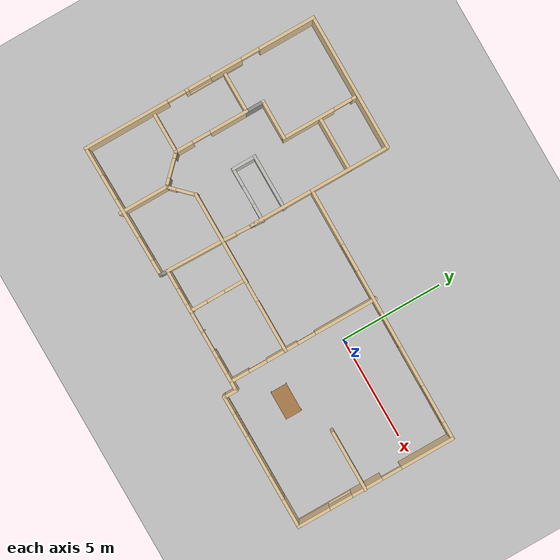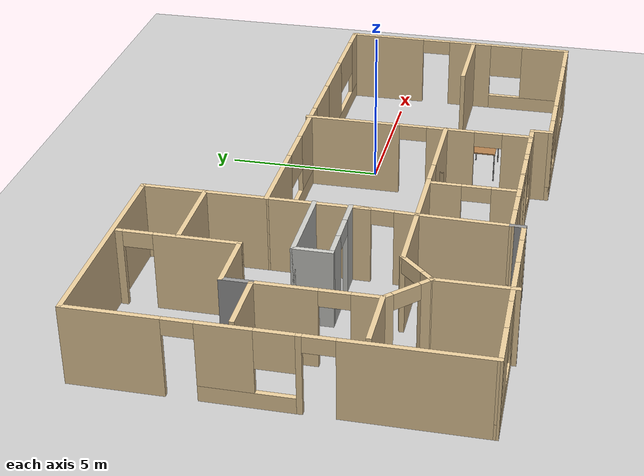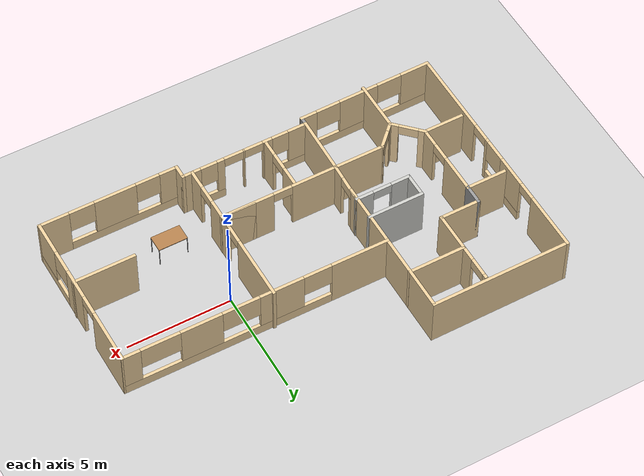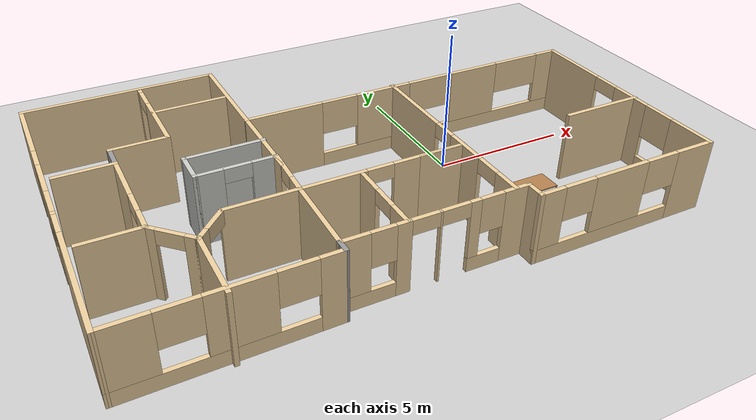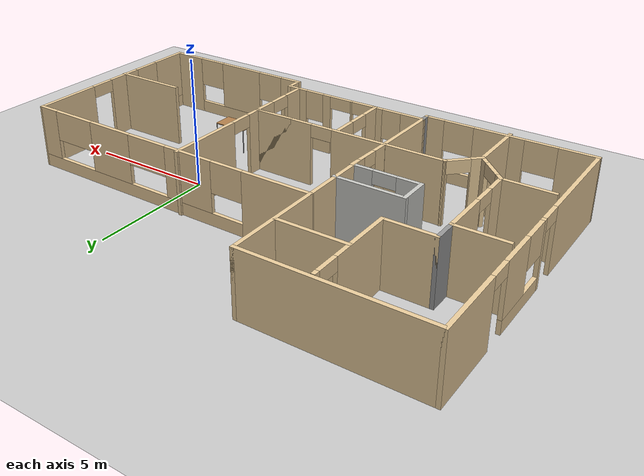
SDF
<sdf version="1.6">
 <world name="kr5mobile">
  <light name="sun" type="directional">
   <pose>0 0 10 0 -0 0</pose>
   <diffuse>0.8 0.8 0.8 1</diffuse>
   <specular>0.1 0.1 0.1 1</specular>
   <attenuation>
    <range>1000</range>
    <constant>0.9</constant>
    <linear>0.01</linear>
    <quadratic>0.001</quadratic>
   </attenuation>
   <direction>-0.5 0.5 -1</direction>
  </light>
  <model name="ground_plane">
   <static>1</static>
   <link name="link">
    <collision name="collision">
     <geometry><plane><normal>0 0 1</normal><size>100 100</size></plane></geometry>
     <surface><friction><ode><mu>100</mu><mu2>50</mu2></ode></friction></surface>
    </collision>
    <visual name="visual">
     <cast_shadows>0</cast_shadows>
     <geometry><plane><normal>0 0 1</normal><size>100 100</size></plane></geometry>
     <material>
      <script><uri>file://media/materials/scripts/gazebo.material</uri><name>Gazebo/Grey</name></script>
     </material>
    </visual>
   </link>
  </model>
  <gravity>0 0 -9.8</gravity>
  <magnetic_field>6e-06 2.3e-05 -4.2e-05</magnetic_field>
  <atmosphere type="adiabatic"/>
  <physics name="default_physics" default="0" type="ode">
   <max_step_size>0.001</max_step_size>
   <real_time_factor>1</real_time_factor>
   <real_time_update_rate>1000</real_time_update_rate>
  </physics>
  <scene><ambient>0.4 0.4 0.4 1</ambient><background>0.7 0.7 0.7 1</background><shadows>1</shadows></scene>
  <spherical_coordinates>
   <surface_model>EARTH_WGS84</surface_model>
   <latitude_deg>0</latitude_deg>
   <longitude_deg>0</longitude_deg>
   <elevation>0</elevation>
   <heading_deg>0</heading_deg>
  </spherical_coordinates>
  <model name="HouseModel">
   <pose>-3.51028 0.019662 0 0 -0 0</pose>
   <link name="Wall_27">
    <pose>-9.61527 0.08422 0 0 -0 1.5708</pose>
    <visual name="Wall_27_Visual_0">
     <pose>-3.75365 0 1.25 0 -0 0</pose>
     <geometry><box><size>4.24271 0.15 2.5</size></box></geometry>
     <material>
      <script><uri>file://media/materials/scripts/gazebo.material</uri><name>Gazebo/Grey</name></script>
      <ambient>0.921569 0.807843 0.615686 1</ambient>
     </material>
    </visual>
    <collision name="Wall_27_Collision_0">
     <geometry><box><size>4.24271 0.15 2.5</size></box></geometry>
     <pose>-3.75365 0 1.25 0 -0 0</pose>
    </collision>
    <visual name="Wall_27_Visual_1">
     <pose>-0.648664 0 1.25 0 -0 0</pose>
     <geometry><box><size>0.167251 0.15 2.5</size></box></geometry>
     <material>
      <script><uri>file://media/materials/scripts/gazebo.material</uri><name>Gazebo/Grey</name></script>
      <ambient>0.921569 0.807843 0.615686 1</ambient>
     </material>
    </visual>
    <collision name="Wall_27_Collision_1">
     <geometry><box><size>0.167251 0.15 2.5</size></box></geometry>
     <pose>-0.648664 0 1.25 0 -0 0</pose>
    </collision>
    <visual name="Wall_27_Visual_2">
     <pose>4.45248 0 1.25 0 -0 0</pose>
     <geometry><box><size>2.84504 0.15 2.5</size></box></geometry>
     <material>
      <script><uri>file://media/materials/scripts/gazebo.material</uri><name>Gazebo/Grey</name></script>
      <ambient>0.921569 0.807843 0.615686 1</ambient>
     </material>
    </visual>
    <collision name="Wall_27_Collision_2">
     <geometry><box><size>2.84504 0.15 2.5</size></box></geometry>
     <pose>4.45248 0 1.25 0 -0 0</pose>
    </collision>
    <visual name="Wall_27_Visual_3">
     <pose>0.782462 0 0.25 0 -0 0</pose>
     <geometry><box><size>2.695 0.15 0.5</size></box></geometry>
     <material>
      <script><uri>file://media/materials/scripts/gazebo.material</uri><name>Gazebo/Grey</name></script>
      <ambient>0.921569 0.807843 0.615686 1</ambient>
     </material>
    </visual>
    <collision name="Wall_27_Collision_3">
     <geometry><box><size>2.695 0.15 0.5</size></box></geometry>
     <pose>0.782462 0 0.25 0 -0 0</pose>
    </collision>
    <visual name="Wall_27_Visual_4">
     <pose>1.33996 0 1.5 0 -0 0</pose>
     <geometry><box><size>1.58 0.15 2</size></box></geometry>
     <material>
      <script><uri>file://media/materials/scripts/gazebo.material</uri><name>Gazebo/Grey</name></script>
      <ambient>0.921569 0.807843 0.615686 1</ambient>
     </material>
    </visual>
    <collision name="Wall_27_Collision_4">
     <geometry><box><size>1.58 0.15 2</size></box></geometry>
     <pose>1.33996 0 1.5 0 -0 0</pose>
    </collision>
    <visual name="Wall_27_Visual_5">
     <pose>-0.007538 0 1.9 0 -0 0</pose>
     <geometry><box><size>1.115 0.15 1.2</size></box></geometry>
     <material>
      <script><uri>file://media/materials/scripts/gazebo.material</uri><name>Gazebo/Grey</name></script>
      <ambient>0.921569 0.807843 0.615686 1</ambient>
     </material>
    </visual>
    <collision name="Wall_27_Collision_5">
     <geometry><box><size>1.115 0.15 1.2</size></box></geometry>
     <pose>-0.007538 0 1.9 0 -0 0</pose>
    </collision>
    <visual name="Wall_27_Visual_6">
     <pose>-1.18229 0 2.25 0 -0 0</pose>
     <geometry><box><size>0.9 0.15 0.5</size></box></geometry>
     <material>
      <script><uri>file://media/materials/scripts/gazebo.material</uri><name>Gazebo/Grey</name></script>
      <ambient>0.921569 0.807843 0.615686 1</ambient>
     </material>
    </visual>
    <collision name="Wall_27_Collision_6">
     <geometry><box><size>0.9 0.15 0.5</size></box></geometry>
     <pose>-1.18229 0 2.25 0 -0 0</pose>
    </collision>
    <visual name="Wall_27_Visual_7">
     <pose>2.57996 0 2.25 0 -0 0</pose>
     <geometry><box><size>0.9 0.15 0.5</size></box></geometry>
     <material>
      <script><uri>file://media/materials/scripts/gazebo.material</uri><name>Gazebo/Grey</name></script>
      <ambient>0.921569 0.807843 0.615686 1</ambient>
     </material>
    </visual>
    <collision name="Wall_27_Collision_7">
     <geometry><box><size>0.9 0.15 0.5</size></box></geometry>
     <pose>2.57996 0 2.25 0 -0 0</pose>
    </collision>
   </link>
   <link name="Wall_28">
    <collision name="Wall_28_Collision">
     <geometry><box><size>6.75 0.15 2.5</size></box></geometry>
     <pose>0 0 1.25 0 -0 0</pose>
    </collision>
    <visual name="Wall_28_Visual">
     <pose>0 0 1.25 0 -0 0</pose>
     <geometry><box><size>6.75 0.15 2.5</size></box></geometry>
     <material>
      <script><uri>file://media/materials/scripts/gazebo.material</uri><name>Gazebo/Grey</name></script>
      <ambient>0.921569 0.807843 0.615686 1</ambient>
     </material>
    </visual>
    <pose>-6.31527 5.88422 0 0 -0 0</pose>
   </link>
   <link name="Wall_31">
    <collision name="Wall_31_Collision">
     <geometry><box><size>4 0.15 2.5</size></box></geometry>
     <pose>0 0 1.25 0 -0 0</pose>
    </collision>
    <visual name="Wall_31_Visual">
     <pose>0 0 1.25 0 -0 0</pose>
     <geometry><box><size>4 0.15 2.5</size></box></geometry>
     <material>
      <script><uri>file://media/materials/scripts/gazebo.material</uri><name>Gazebo/Grey</name></script>
      <ambient>0.921569 0.807843 0.615686 1</ambient>
     </material>
    </visual>
    <pose>-3.01526 3.95922 0 0 0 -1.5708</pose>
   </link>
   <link name="Wall_32">
    <pose>3.28473 2 0 0 0 -0.005432</pose>
    <visual name="Wall_32_Visual_0">
     <pose>-4.9697 0 1.25 0 -0 0</pose>
     <geometry><box><size>2.81061 0.15 2.5</size></box></geometry>
     <material>
      <script><uri>file://media/materials/scripts/gazebo.material</uri><name>Gazebo/Grey</name></script>
      <ambient>0.921569 0.807843 0.615686 1</ambient>
     </material>
    </visual>
    <collision name="Wall_32_Collision_0">
     <geometry><box><size>2.81061 0.15 2.5</size></box></geometry>
     <pose>-4.9697 0 1.25 0 -0 0</pose>
    </collision>
    <visual name="Wall_32_Visual_1">
     <pose>1.4053 0 0.25 0 -0 0</pose>
     <geometry><box><size>9.93939 0.15 0.5</size></box></geometry>
     <material>
      <script><uri>file://media/materials/scripts/gazebo.material</uri><name>Gazebo/Grey</name></script>
      <ambient>0.921569 0.807843 0.615686 1</ambient>
     </material>
    </visual>
    <collision name="Wall_32_Collision_1">
     <geometry><box><size>9.93939 0.15 0.5</size></box></geometry>
     <pose>1.4053 0 0.25 0 -0 0</pose>
    </collision>
    <visual name="Wall_32_Visual_2">
     <pose>-1.17274 0 1.5 0 -0 0</pose>
     <geometry><box><size>2.10185 0.15 2</size></box></geometry>
     <material>
      <script><uri>file://media/materials/scripts/gazebo.material</uri><name>Gazebo/Grey</name></script>
      <ambient>0.921569 0.807843 0.615686 1</ambient>
     </material>
    </visual>
    <collision name="Wall_32_Collision_2">
     <geometry><box><size>2.10185 0.15 2</size></box></geometry>
     <pose>-1.17274 0 1.5 0 -0 0</pose>
    </collision>
    <visual name="Wall_32_Visual_3">
     <pose>2.62946 0 1.5 0 -0 0</pose>
     <geometry><box><size>1.96709 0.15 2</size></box></geometry>
     <material>
      <script><uri>file://media/materials/scripts/gazebo.material</uri><name>Gazebo/Grey</name></script>
      <ambient>0.921569 0.807843 0.615686 1</ambient>
     </material>
    </visual>
    <collision name="Wall_32_Collision_3">
     <geometry><box><size>1.96709 0.15 2</size></box></geometry>
     <pose>2.62946 0 1.5 0 -0 0</pose>
    </collision>
    <visual name="Wall_32_Visual_4">
     <pose>5.92268 0 1.5 0 -0 0</pose>
     <geometry><box><size>0.904636 0.15 2</size></box></geometry>
     <material>
      <script><uri>file://media/materials/scripts/gazebo.material</uri><name>Gazebo/Grey</name></script>
      <ambient>0.921569 0.807843 0.615686 1</ambient>
     </material>
    </visual>
    <collision name="Wall_32_Collision_4">
     <geometry><box><size>0.904636 0.15 2</size></box></geometry>
     <pose>5.92268 0 1.5 0 -0 0</pose>
    </collision>
    <visual name="Wall_32_Visual_5">
     <pose>-2.89403 0 1.9 0 -0 0</pose>
     <geometry><box><size>1.34072 0.15 1.2</size></box></geometry>
     <material>
      <script><uri>file://media/materials/scripts/gazebo.material</uri><name>Gazebo/Grey</name></script>
      <ambient>0.921569 0.807843 0.615686 1</ambient>
     </material>
    </visual>
    <collision name="Wall_32_Collision_5">
     <geometry><box><size>1.34072 0.15 1.2</size></box></geometry>
     <pose>-2.89403 0 1.9 0 -0 0</pose>
    </collision>
    <visual name="Wall_32_Visual_6">
     <pose>0.762044 0 1.9 0 -0 0</pose>
     <geometry><box><size>1.76773 0.15 1.2</size></box></geometry>
     <material>
      <script><uri>file://media/materials/scripts/gazebo.material</uri><name>Gazebo/Grey</name></script>
      <ambient>0.921569 0.807843 0.615686 1</ambient>
     </material>
    </visual>
    <collision name="Wall_32_Collision_6">
     <geometry><box><size>1.76773 0.15 1.2</size></box></geometry>
     <pose>0.762044 0 1.9 0 -0 0</pose>
    </collision>
    <visual name="Wall_32_Visual_7">
     <pose>4.54168 0 1.9 0 -0 0</pose>
     <geometry><box><size>1.85736 0.15 1.2</size></box></geometry>
     <material>
      <script><uri>file://media/materials/scripts/gazebo.material</uri><name>Gazebo/Grey</name></script>
      <ambient>0.921569 0.807843 0.615686 1</ambient>
     </material>
    </visual>
    <collision name="Wall_32_Collision_7">
     <geometry><box><size>1.85736 0.15 1.2</size></box></geometry>
     <pose>4.54168 0 1.9 0 -0 0</pose>
    </collision>
   </link>
   <link name="Wall_35">
    <pose>9.58474 -1.95922 0 0 0 -1.5708</pose>
    <visual name="Wall_35_Visual_0">
     <pose>-2.66047 0 1.25 0 -0 0</pose>
     <geometry><box><size>2.67907 0.15 2.5</size></box></geometry>
     <material>
      <script><uri>file://media/materials/scripts/gazebo.material</uri><name>Gazebo/Grey</name></script>
      <ambient>0.921569 0.807843 0.615686 1</ambient>
     </material>
    </visual>
    <collision name="Wall_35_Collision_0">
     <geometry><box><size>2.67907 0.15 2.5</size></box></geometry>
     <pose>-2.66047 0 1.25 0 -0 0</pose>
    </collision>
    <visual name="Wall_35_Visual_1">
     <pose>0.421947 0 1.25 0 -0 0</pose>
     <geometry><box><size>1.52924 0.15 2.5</size></box></geometry>
     <material>
      <script><uri>file://media/materials/scripts/gazebo.material</uri><name>Gazebo/Grey</name></script>
      <ambient>0.921569 0.807843 0.615686 1</ambient>
     </material>
    </visual>
    <collision name="Wall_35_Collision_1">
     <geometry><box><size>1.52924 0.15 2.5</size></box></geometry>
     <pose>0.421947 0 1.25 0 -0 0</pose>
    </collision>
    <visual name="Wall_35_Visual_2">
     <pose>2.59328 0 0.25 0 -0 0</pose>
     <geometry><box><size>2.81343 0.15 0.5</size></box></geometry>
     <material>
      <script><uri>file://media/materials/scripts/gazebo.material</uri><name>Gazebo/Grey</name></script>
      <ambient>0.921569 0.807843 0.615686 1</ambient>
     </material>
    </visual>
    <collision name="Wall_35_Collision_2">
     <geometry><box><size>2.81343 0.15 0.5</size></box></geometry>
     <pose>2.59328 0 0.25 0 -0 0</pose>
    </collision>
    <visual name="Wall_35_Visual_3">
     <pose>3.16203 0 1.5 0 -0 0</pose>
     <geometry><box><size>1.67593 0.15 2</size></box></geometry>
     <material>
      <script><uri>file://media/materials/scripts/gazebo.material</uri><name>Gazebo/Grey</name></script>
      <ambient>0.921569 0.807843 0.615686 1</ambient>
     </material>
    </visual>
    <collision name="Wall_35_Collision_3">
     <geometry><box><size>1.67593 0.15 2</size></box></geometry>
     <pose>3.16203 0 1.5 0 -0 0</pose>
    </collision>
    <visual name="Wall_35_Visual_4">
     <pose>1.75532 0 1.9 0 -0 0</pose>
     <geometry><box><size>1.1375 0.15 1.2</size></box></geometry>
     <material>
      <script><uri>file://media/materials/scripts/gazebo.material</uri><name>Gazebo/Grey</name></script>
      <ambient>0.921569 0.807843 0.615686 1</ambient>
     </material>
    </visual>
    <collision name="Wall_35_Collision_4">
     <geometry><box><size>1.1375 0.15 1.2</size></box></geometry>
     <pose>1.75532 0 1.9 0 -0 0</pose>
    </collision>
    <visual name="Wall_35_Visual_5">
     <pose>-0.831802 0 2.25 0 -0 0</pose>
     <geometry><box><size>0.978261 0.15 0.5</size></box></geometry>
     <material>
      <script><uri>file://media/materials/scripts/gazebo.material</uri><name>Gazebo/Grey</name></script>
      <ambient>0.921569 0.807843 0.615686 1</ambient>
     </material>
    </visual>
    <collision name="Wall_35_Collision_5">
     <geometry><box><size>0.978261 0.15 0.5</size></box></geometry>
     <pose>-0.831802 0 2.25 0 -0 0</pose>
    </collision>
   </link>
   <link name="Wall_36">
    <pose>6.28474 -5.88422 0 0 -0 3.14159</pose>
    <visual name="Wall_36_Visual_0">
     <pose>-2.64367 0 1.25 0 -0 0</pose>
     <geometry><box><size>1.46265 0.15 2.5</size></box></geometry>
     <material>
      <script><uri>file://media/materials/scripts/gazebo.material</uri><name>Gazebo/Grey</name></script>
      <ambient>0.921569 0.807843 0.615686 1</ambient>
     </material>
    </visual>
    <collision name="Wall_36_Collision_0">
     <geometry><box><size>1.46265 0.15 2.5</size></box></geometry>
     <pose>-2.64367 0 1.25 0 -0 0</pose>
    </collision>
    <visual name="Wall_36_Visual_1">
     <pose>0.731325 0 0.25 0 -0 0</pose>
     <geometry><box><size>5.28735 0.15 0.5</size></box></geometry>
     <material>
      <script><uri>file://media/materials/scripts/gazebo.material</uri><name>Gazebo/Grey</name></script>
      <ambient>0.921569 0.807843 0.615686 1</ambient>
     </material>
    </visual>
    <collision name="Wall_36_Collision_1">
     <geometry><box><size>5.28735 0.15 0.5</size></box></geometry>
     <pose>0.731325 0 0.25 0 -0 0</pose>
    </collision>
    <visual name="Wall_36_Visual_2">
     <pose>0.2989 0 1.5 0 -0 0</pose>
     <geometry><box><size>2.0125 0.15 2</size></box></geometry>
     <material>
      <script><uri>file://media/materials/scripts/gazebo.material</uri><name>Gazebo/Grey</name></script>
      <ambient>0.921569 0.807843 0.615686 1</ambient>
     </material>
    </visual>
    <collision name="Wall_36_Collision_2">
     <geometry><box><size>2.0125 0.15 2</size></box></geometry>
     <pose>0.2989 0 1.5 0 -0 0</pose>
    </collision>
    <visual name="Wall_36_Visual_3">
     <pose>2.90883 0 1.5 0 -0 0</pose>
     <geometry><box><size>0.93235 0.15 2</size></box></geometry>
     <material>
      <script><uri>file://media/materials/scripts/gazebo.material</uri><name>Gazebo/Grey</name></script>
      <ambient>0.921569 0.807843 0.615686 1</ambient>
     </material>
    </visual>
    <collision name="Wall_36_Collision_3">
     <geometry><box><size>0.93235 0.15 2</size></box></geometry>
     <pose>2.90883 0 1.5 0 -0 0</pose>
    </collision>
    <visual name="Wall_36_Visual_4">
     <pose>-1.30985 0 1.9 0 -0 0</pose>
     <geometry><box><size>1.205 0.15 1.2</size></box></geometry>
     <material>
      <script><uri>file://media/materials/scripts/gazebo.material</uri><name>Gazebo/Grey</name></script>
      <ambient>0.921569 0.807843 0.615686 1</ambient>
     </material>
    </visual>
    <collision name="Wall_36_Collision_4">
     <geometry><box><size>1.205 0.15 1.2</size></box></geometry>
     <pose>-1.30985 0 1.9 0 -0 0</pose>
    </collision>
    <visual name="Wall_36_Visual_5">
     <pose>1.8739 0 1.9 0 -0 0</pose>
     <geometry><box><size>1.1375 0.15 1.2</size></box></geometry>
     <material>
      <script><uri>file://media/materials/scripts/gazebo.material</uri><name>Gazebo/Grey</name></script>
      <ambient>0.921569 0.807843 0.615686 1</ambient>
     </material>
    </visual>
    <collision name="Wall_36_Collision_5">
     <geometry><box><size>1.1375 0.15 1.2</size></box></geometry>
     <pose>1.8739 0 1.9 0 -0 0</pose>
    </collision>
   </link>
   <link name="Wall_37">
    <collision name="Wall_37_Collision">
     <geometry><box><size>0.75 0.15 2.5</size></box></geometry>
     <pose>0 0 1.25 0 -0 0</pose>
    </collision>
    <visual name="Wall_37_Visual">
     <pose>0 0 1.25 0 -0 0</pose>
     <geometry><box><size>0.75 0.15 2.5</size></box></geometry>
     <material>
      <script><uri>file://media/materials/scripts/gazebo.material</uri><name>Gazebo/Grey</name></script>
      <ambient>0.921569 0.807843 0.615686 1</ambient>
     </material>
    </visual>
    <pose>2.98474 -5.58422 0 0 -0 1.5708</pose>
   </link>
   <link name="Wall_38">
    <pose>-0.065265 -5.28422 0 0 -0 3.14159</pose>
    <visual name="Wall_38_Visual_0">
     <pose>-2.65618 0 1.25 0 -0 0</pose>
     <geometry><box><size>0.93765 0.15 2.5</size></box></geometry>
     <material>
      <script><uri>file://media/materials/scripts/gazebo.material</uri><name>Gazebo/Grey</name></script>
      <ambient>0.921569 0.807843 0.615686 1</ambient>
     </material>
    </visual>
    <collision name="Wall_38_Collision_0">
     <geometry><box><size>0.93765 0.15 2.5</size></box></geometry>
     <pose>-2.65618 0 1.25 0 -0 0</pose>
    </collision>
    <visual name="Wall_38_Visual_1">
     <pose>-0.05751 0 1.25 0 -0 0</pose>
     <geometry><box><size>0.068478 0.15 2.5</size></box></geometry>
     <material>
      <script><uri>file://media/materials/scripts/gazebo.material</uri><name>Gazebo/Grey</name></script>
      <ambient>0.921569 0.807843 0.615686 1</ambient>
     </material>
    </visual>
    <collision name="Wall_38_Collision_1">
     <geometry><box><size>0.068478 0.15 2.5</size></box></geometry>
     <pose>-0.05751 0 1.25 0 -0 0</pose>
    </collision>
    <visual name="Wall_38_Visual_2">
     <pose>1.11094 0 1.25 0 -0 0</pose>
     <geometry><box><size>0.468421 0.15 2.5</size></box></geometry>
     <material>
      <script><uri>file://media/materials/scripts/gazebo.material</uri><name>Gazebo/Grey</name></script>
      <ambient>0.921569 0.807843 0.615686 1</ambient>
     </material>
    </visual>
    <collision name="Wall_38_Collision_2">
     <geometry><box><size>0.468421 0.15 2.5</size></box></geometry>
     <pose>1.11094 0 1.25 0 -0 0</pose>
    </collision>
    <visual name="Wall_38_Visual_3">
     <pose>-1.60912 0 0.25 0 -0 0</pose>
     <geometry><box><size>1.15647 0.15 0.5</size></box></geometry>
     <material>
      <script><uri>file://media/materials/scripts/gazebo.material</uri><name>Gazebo/Grey</name></script>
      <ambient>0.921569 0.807843 0.615686 1</ambient>
     </material>
    </visual>
    <collision name="Wall_38_Collision_3">
     <geometry><box><size>1.15647 0.15 0.5</size></box></geometry>
     <pose>-1.60912 0 0.25 0 -0 0</pose>
    </collision>
    <visual name="Wall_38_Visual_4">
     <pose>2.23508 0 0.25 0 -0 0</pose>
     <geometry><box><size>1.77985 0.15 0.5</size></box></geometry>
     <material>
      <script><uri>file://media/materials/scripts/gazebo.material</uri><name>Gazebo/Grey</name></script>
      <ambient>0.921569 0.807843 0.615686 1</ambient>
     </material>
    </visual>
    <collision name="Wall_38_Collision_4">
     <geometry><box><size>1.77985 0.15 0.5</size></box></geometry>
     <pose>2.23508 0 0.25 0 -0 0</pose>
    </collision>
    <visual name="Wall_38_Visual_5">
     <pose>-1.20911 0 1.5 0 -0 0</pose>
     <geometry><box><size>0.35647 0.15 2</size></box></geometry>
     <material>
      <script><uri>file://media/materials/scripts/gazebo.material</uri><name>Gazebo/Grey</name></script>
      <ambient>0.921569 0.807843 0.615686 1</ambient>
     </material>
    </visual>
    <collision name="Wall_38_Collision_5">
     <geometry><box><size>0.35647 0.15 2</size></box></geometry>
     <pose>-1.20911 0 1.5 0 -0 0</pose>
    </collision>
    <visual name="Wall_38_Visual_6">
     <pose>-1.20911 0 1.5 0 -0 0</pose>
     <geometry><box><size>0.35647 0.15 2</size></box></geometry>
     <material>
      <script><uri>file://media/materials/scripts/gazebo.material</uri><name>Gazebo/Grey</name></script>
      <ambient>0.921569 0.807843 0.615686 1</ambient>
     </material>
    </visual>
    <collision name="Wall_38_Collision_6">
     <geometry><box><size>0.35647 0.15 2</size></box></geometry>
     <pose>-1.20911 0 1.5 0 -0 0</pose>
    </collision>
    <visual name="Wall_38_Visual_7">
     <pose>2.63508 0 1.5 0 -0 0</pose>
     <geometry><box><size>0.97985 0.15 2</size></box></geometry>
     <material>
      <script><uri>file://media/materials/scripts/gazebo.material</uri><name>Gazebo/Grey</name></script>
      <ambient>0.921569 0.807843 0.615686 1</ambient>
     </material>
    </visual>
    <collision name="Wall_38_Collision_7">
     <geometry><box><size>0.97985 0.15 2</size></box></geometry>
     <pose>2.63508 0 1.5 0 -0 0</pose>
    </collision>
    <visual name="Wall_38_Visual_8">
     <pose>-1.78735 0 1.9 0 -0 0</pose>
     <geometry><box><size>0.8 0.15 1.2</size></box></geometry>
     <material>
      <script><uri>file://media/materials/scripts/gazebo.material</uri><name>Gazebo/Grey</name></script>
      <ambient>0.921569 0.807843 0.615686 1</ambient>
     </material>
    </visual>
    <collision name="Wall_38_Collision_8">
     <geometry><box><size>0.8 0.15 1.2</size></box></geometry>
     <pose>-1.78735 0 1.9 0 -0 0</pose>
    </collision>
    <visual name="Wall_38_Visual_9">
     <pose>1.74515 0 1.9 0 -0 0</pose>
     <geometry><box><size>0.8 0.15 1.2</size></box></geometry>
     <material>
      <script><uri>file://media/materials/scripts/gazebo.material</uri><name>Gazebo/Grey</name></script>
      <ambient>0.921569 0.807843 0.615686 1</ambient>
     </material>
    </visual>
    <collision name="Wall_38_Collision_9">
     <geometry><box><size>0.8 0.15 1.2</size></box></geometry>
     <pose>1.74515 0 1.9 0 -0 0</pose>
    </collision>
    <visual name="Wall_38_Visual_10">
     <pose>0.426729 0 2.25 0 -0 0</pose>
     <geometry><box><size>0.9 0.15 0.5</size></box></geometry>
     <material>
      <script><uri>file://media/materials/scripts/gazebo.material</uri><name>Gazebo/Grey</name></script>
      <ambient>0.921569 0.807843 0.615686 1</ambient>
     </material>
    </visual>
    <collision name="Wall_38_Collision_10">
     <geometry><box><size>0.9 0.15 0.5</size></box></geometry>
     <pose>0.426729 0 2.25 0 -0 0</pose>
    </collision>
    <visual name="Wall_38_Visual_11">
     <pose>-0.561314 0 2.25 0 -0 0</pose>
     <geometry><box><size>0.93913 0.15 0.5</size></box></geometry>
     <material>
      <script><uri>file://media/materials/scripts/gazebo.material</uri><name>Gazebo/Grey</name></script>
      <ambient>0.921569 0.807843 0.615686 1</ambient>
     </material>
    </visual>
    <collision name="Wall_38_Collision_11">
     <geometry><box><size>0.93913 0.15 0.5</size></box></geometry>
     <pose>-0.561314 0 2.25 0 -0 0</pose>
    </collision>
    <visual name="Wall_38_Visual_12">
     <pose>-0.561314 0 2.25 0 -0 0</pose>
     <geometry><box><size>0.93913 0.15 0.5</size></box></geometry>
     <material>
      <script><uri>file://media/materials/scripts/gazebo.material</uri><name>Gazebo/Grey</name></script>
      <ambient>0.921569 0.807843 0.615686 1</ambient>
     </material>
    </visual>
    <collision name="Wall_38_Collision_12">
     <geometry><box><size>0.93913 0.15 0.5</size></box></geometry>
     <pose>-0.561314 0 2.25 0 -0 0</pose>
    </collision>
   </link>
   <link name="Wall_39">
    <collision name="Wall_39_Collision">
     <geometry><box><size>0.5 0.15 2.5</size></box></geometry>
     <pose>0 0 1.25 0 -0 0</pose>
    </collision>
    <visual name="Wall_39_Visual">
     <pose>0 0 1.25 0 -0 0</pose>
     <geometry><box><size>0.5 0.15 2.5</size></box></geometry>
     <material>
      <script><uri>file://media/materials/scripts/gazebo.material</uri><name>Gazebo/Grey</name></script>
      <ambient>1 1 1 1</ambient>
     </material>
    </visual>
    <pose>-3.11526 -5.45922 0 0 0 -1.5708</pose>
   </link>
   <link name="Wall_40">
    <pose>-6.36526 -5.675 0 0 0 -3.12905</pose>
    <visual name="Wall_40_Visual_0">
     <pose>-2.91353 0 1.25 0 -0 0</pose>
     <geometry><box><size>0.823458 0.15 2.5</size></box></geometry>
     <material>
      <script><uri>file://media/materials/scripts/gazebo.material</uri><name>Gazebo/Grey</name></script>
      <ambient>0.921569 0.807843 0.615686 1</ambient>
     </material>
    </visual>
    <collision name="Wall_40_Collision_0">
     <geometry><box><size>0.823458 0.15 2.5</size></box></geometry>
     <pose>-2.91353 0 1.25 0 -0 0</pose>
    </collision>
    <visual name="Wall_40_Visual_1">
     <pose>0.411729 0 0.25 0 -0 0</pose>
     <geometry><box><size>5.82705 0.15 0.5</size></box></geometry>
     <material>
      <script><uri>file://media/materials/scripts/gazebo.material</uri><name>Gazebo/Grey</name></script>
      <ambient>0.921569 0.807843 0.615686 1</ambient>
     </material>
    </visual>
    <collision name="Wall_40_Collision_1">
     <geometry><box><size>5.82705 0.15 0.5</size></box></geometry>
     <pose>0.411729 0 0.25 0 -0 0</pose>
    </collision>
    <visual name="Wall_40_Visual_2">
     <pose>-0.346936 0 1.5 0 -0 0</pose>
     <geometry><box><size>1.94478 0.15 2</size></box></geometry>
     <material>
      <script><uri>file://media/materials/scripts/gazebo.material</uri><name>Gazebo/Grey</name></script>
      <ambient>0.921569 0.807843 0.615686 1</ambient>
     </material>
    </visual>
    <collision name="Wall_40_Collision_2">
     <geometry><box><size>1.94478 0.15 2</size></box></geometry>
     <pose>-0.346936 0 1.5 0 -0 0</pose>
    </collision>
    <visual name="Wall_40_Visual_3">
     <pose>2.58923 0 1.5 0 -0 0</pose>
     <geometry><box><size>1.47205 0.15 2</size></box></geometry>
     <material>
      <script><uri>file://media/materials/scripts/gazebo.material</uri><name>Gazebo/Grey</name></script>
      <ambient>0.921569 0.807843 0.615686 1</ambient>
     </material>
    </visual>
    <collision name="Wall_40_Collision_3">
     <geometry><box><size>1.47205 0.15 2</size></box></geometry>
     <pose>2.58923 0 1.5 0 -0 0</pose>
    </collision>
    <visual name="Wall_40_Visual_4">
     <pose>-1.91056 0 1.9 0 -0 0</pose>
     <geometry><box><size>1.18247 0.15 1.2</size></box></geometry>
     <material>
      <script><uri>file://media/materials/scripts/gazebo.material</uri><name>Gazebo/Grey</name></script>
      <ambient>0.921569 0.807843 0.615686 1</ambient>
     </material>
    </visual>
    <collision name="Wall_40_Collision_4">
     <geometry><box><size>1.18247 0.15 1.2</size></box></geometry>
     <pose>-1.91056 0 1.9 0 -0 0</pose>
    </collision>
    <visual name="Wall_40_Visual_5">
     <pose>1.23933 0 1.9 0 -0 0</pose>
     <geometry><box><size>1.22775 0.15 1.2</size></box></geometry>
     <material>
      <script><uri>file://media/materials/scripts/gazebo.material</uri><name>Gazebo/Grey</name></script>
      <ambient>0.921569 0.807843 0.615686 1</ambient>
     </material>
    </visual>
    <collision name="Wall_40_Collision_5">
     <geometry><box><size>1.22775 0.15 1.2</size></box></geometry>
     <pose>1.23933 0 1.9 0 -0 0</pose>
    </collision>
   </link>
   <link name="Wall_42">
    <collision name="Wall_42_Collision">
     <geometry><box><size>2.5 0.15 2.5</size></box></geometry>
     <pose>0 0 1.25 0 -0 0</pose>
    </collision>
    <visual name="Wall_42_Visual">
     <pose>0 0 1.25 0 -0 0</pose>
     <geometry><box><size>2.5 0.15 2.5</size></box></geometry>
     <material>
      <script><uri>file://media/materials/scripts/gazebo.material</uri><name>Gazebo/Grey</name></script>
      <ambient>0.921569 0.807843 0.615686 1</ambient>
     </material>
    </visual>
    <pose>-6.36439 -4.64344 0 0 -0 1.5708</pose>
   </link>
   <link name="Wall_43">
    <pose>-5.8871 -2.99114 0 0 -0 0.785398</pose>
    <visual name="Wall_43_Visual_0">
     <pose>-0.496193 0 1.25 0 -0 0</pose>
     <geometry><box><size>0.507614 0.15 2.5</size></box></geometry>
     <material>
      <script><uri>file://media/materials/scripts/gazebo.material</uri><name>Gazebo/Grey</name></script>
      <ambient>0.921569 0.807843 0.615686 1</ambient>
     </material>
    </visual>
    <collision name="Wall_43_Collision_0">
     <geometry><box><size>0.507614 0.15 2.5</size></box></geometry>
     <pose>-0.496193 0 1.25 0 -0 0</pose>
    </collision>
    <visual name="Wall_43_Visual_1">
     <pose>0.703807 0 1.25 0 -0 0</pose>
     <geometry><box><size>0.092386 0.15 2.5</size></box></geometry>
     <material>
      <script><uri>file://media/materials/scripts/gazebo.material</uri><name>Gazebo/Grey</name></script>
      <ambient>0.921569 0.807843 0.615686 1</ambient>
     </material>
    </visual>
    <collision name="Wall_43_Collision_1">
     <geometry><box><size>0.092386 0.15 2.5</size></box></geometry>
     <pose>0.703807 0 1.25 0 -0 0</pose>
    </collision>
    <visual name="Wall_43_Visual_2">
     <pose>0.207614 0 2.25 0 -0 0</pose>
     <geometry><box><size>0.9 0.15 0.5</size></box></geometry>
     <material>
      <script><uri>file://media/materials/scripts/gazebo.material</uri><name>Gazebo/Grey</name></script>
      <ambient>0.921569 0.807843 0.615686 1</ambient>
     </material>
    </visual>
    <collision name="Wall_43_Collision_2">
     <geometry><box><size>0.9 0.15 0.5</size></box></geometry>
     <pose>0.207614 0 2.25 0 -0 0</pose>
    </collision>
   </link>
   <link name="Wall_44">
    <collision name="Wall_44_Collision">
     <geometry><box><size>2.5 0.15 2.5</size></box></geometry>
     <pose>0 0 1.25 0 -0 0</pose>
    </collision>
    <visual name="Wall_44_Visual">
     <pose>0 0 1.25 0 -0 0</pose>
     <geometry><box><size>2.5 0.15 2.5</size></box></geometry>
     <material>
      <script><uri>file://media/materials/scripts/gazebo.material</uri><name>Gazebo/Grey</name></script>
      <ambient>0.921569 0.807843 0.615686 1</ambient>
     </material>
    </visual>
    <pose>-4.2348 -2.51384 0 0 -0 0</pose>
   </link>
   <link name="Wall_45">
    <collision name="Wall_45_Collision">
     <geometry><box><size>2.92093 0.15 2.5</size></box></geometry>
     <pose>0 0 1.25 0 -0 0</pose>
    </collision>
    <visual name="Wall_45_Visual">
     <pose>0 0 1.25 0 -0 0</pose>
     <geometry><box><size>2.92093 0.15 2.5</size></box></geometry>
     <material>
      <script><uri>file://media/materials/scripts/gazebo.material</uri><name>Gazebo/Grey</name></script>
      <ambient>0.921569 0.807843 0.615686 1</ambient>
     </material>
    </visual>
    <pose>-3.08753 -3.89903 0 0 0 -1.59081</pose>
   </link>
   <link name="Wall_47">
    <pose>-6.93008 -2.90275 0 0 -0 2.35619</pose>
    <visual name="Wall_47_Visual_0">
     <pose>-0.637033 0 1.25 0 -0 0</pose>
     <geometry><box><size>0.475935 0.15 2.5</size></box></geometry>
     <material>
      <script><uri>file://media/materials/scripts/gazebo.material</uri><name>Gazebo/Grey</name></script>
      <ambient>0.921569 0.807843 0.615686 1</ambient>
     </material>
    </visual>
    <collision name="Wall_47_Collision_0">
     <geometry><box><size>0.475935 0.15 2.5</size></box></geometry>
     <pose>-0.637033 0 1.25 0 -0 0</pose>
    </collision>
    <visual name="Wall_47_Visual_1">
     <pose>0.687967 0 1.25 0 -0 0</pose>
     <geometry><box><size>0.374065 0.15 2.5</size></box></geometry>
     <material>
      <script><uri>file://media/materials/scripts/gazebo.material</uri><name>Gazebo/Grey</name></script>
      <ambient>0.921569 0.807843 0.615686 1</ambient>
     </material>
    </visual>
    <collision name="Wall_47_Collision_1">
     <geometry><box><size>0.374065 0.15 2.5</size></box></geometry>
     <pose>0.687967 0 1.25 0 -0 0</pose>
    </collision>
    <visual name="Wall_47_Visual_2">
     <pose>0.050935 0 2.25 0 -0 0</pose>
     <geometry><box><size>0.9 0.15 0.5</size></box></geometry>
     <material>
      <script><uri>file://media/materials/scripts/gazebo.material</uri><name>Gazebo/Grey</name></script>
      <ambient>0.921569 0.807843 0.615686 1</ambient>
     </material>
    </visual>
    <collision name="Wall_47_Collision_2">
     <geometry><box><size>0.9 0.15 0.5</size></box></geometry>
     <pose>0.050935 0 2.25 0 -0 0</pose>
    </collision>
   </link>
   <link name="Wall_48">
    <collision name="Wall_48_Collision">
     <geometry><box><size>2 0.15 2.5</size></box></geometry>
     <pose>0 0 1.25 0 -0 0</pose>
    </collision>
    <visual name="Wall_48_Visual">
     <pose>0 0 1.25 0 -0 0</pose>
     <geometry><box><size>2 0.15 2.5</size></box></geometry>
     <material>
      <script><uri>file://media/materials/scripts/gazebo.material</uri><name>Gazebo/Grey</name></script>
      <ambient>0.921569 0.807843 0.615686 1</ambient>
     </material>
    </visual>
    <pose>-8.42076 -2.33707 0 0 -0 3.14159</pose>
   </link>
   <link name="Wall_50">
    <pose>-7.49576 -0.537069 0 0 -0 1.5708</pose>
    <visual name="Wall_50_Visual_0">
     <pose>-1.41365 0 1.25 0 -0 0</pose>
     <geometry><box><size>0.922694 0.15 2.5</size></box></geometry>
     <material>
      <script><uri>file://media/materials/scripts/gazebo.material</uri><name>Gazebo/Grey</name></script>
      <ambient>0.921569 0.807843 0.615686 1</ambient>
     </material>
    </visual>
    <collision name="Wall_50_Collision_0">
     <geometry><box><size>0.922694 0.15 2.5</size></box></geometry>
     <pose>-1.41365 0 1.25 0 -0 0</pose>
    </collision>
    <visual name="Wall_50_Visual_1">
     <pose>0.911347 0 1.25 0 -0 0</pose>
     <geometry><box><size>1.92731 0.15 2.5</size></box></geometry>
     <material>
      <script><uri>file://media/materials/scripts/gazebo.material</uri><name>Gazebo/Grey</name></script>
      <ambient>0.921569 0.807843 0.615686 1</ambient>
     </material>
    </visual>
    <collision name="Wall_50_Collision_1">
     <geometry><box><size>1.92731 0.15 2.5</size></box></geometry>
     <pose>0.911347 0 1.25 0 -0 0</pose>
    </collision>
    <visual name="Wall_50_Visual_2">
     <pose>-0.502306 0 2.25 0 -0 0</pose>
     <geometry><box><size>0.9 0.15 0.5</size></box></geometry>
     <material>
      <script><uri>file://media/materials/scripts/gazebo.material</uri><name>Gazebo/Grey</name></script>
      <ambient>0.921569 0.807843 0.615686 1</ambient>
     </material>
    </visual>
    <collision name="Wall_50_Collision_2">
     <geometry><box><size>0.9 0.15 0.5</size></box></geometry>
     <pose>-0.502306 0 2.25 0 -0 0</pose>
    </collision>
   </link>
   <link name="Wall_51">
    <collision name="Wall_51_Collision">
     <geometry><box><size>2 0.15 2.5</size></box></geometry>
     <pose>0 0 1.25 0 -0 0</pose>
    </collision>
    <visual name="Wall_51_Visual">
     <pose>0 0 1.25 0 -0 0</pose>
     <geometry><box><size>2 0.15 2.5</size></box></geometry>
     <material>
      <script><uri>file://media/materials/scripts/gazebo.material</uri><name>Gazebo/Grey</name></script>
      <ambient>0.921569 0.807843 0.615686 1</ambient>
     </material>
    </visual>
    <pose>-8.42076 1.26293 0 0 -0 3.14159</pose>
   </link>
   <link name="Wall_53">
    <collision name="Wall_53_Collision">
     <geometry><box><size>1 0.15 2.5</size></box></geometry>
     <pose>0 0 1.25 0 -0 0</pose>
    </collision>
    <visual name="Wall_53_Visual">
     <pose>0 0 1.25 0 -0 0</pose>
     <geometry><box><size>1 0.15 2.5</size></box></geometry>
     <material>
      <script><uri>file://media/materials/scripts/gazebo.material</uri><name>Gazebo/Grey</name></script>
      <ambient>1 1 1 1</ambient>
     </material>
    </visual>
    <pose>-7.49576 1.68793 0 0 -0 1.5708</pose>
   </link>
   <link name="Wall_54">
    <collision name="Wall_54_Collision">
     <geometry><box><size>2 0.15 2.5</size></box></geometry>
     <pose>0 0 1.25 0 -0 0</pose>
    </collision>
    <visual name="Wall_54_Visual">
     <pose>0 0 1.25 0 -0 0</pose>
     <geometry><box><size>2 0.15 2.5</size></box></geometry>
     <material>
      <script><uri>file://media/materials/scripts/gazebo.material</uri><name>Gazebo/Grey</name></script>
      <ambient>0.921569 0.807843 0.615686 1</ambient>
     </material>
    </visual>
    <pose>-6.57076 2.11293 0 0 -0 0</pose>
   </link>
   <link name="Wall_55">
    <pose>-5.64576 3.91293 0 0 -0 1.5708</pose>
    <visual name="Wall_55_Visual_0">
     <pose>-0.560625 0 1.25 0 -0 0</pose>
     <geometry><box><size>2.62875 0.15 2.5</size></box></geometry>
     <material>
      <script><uri>file://media/materials/scripts/gazebo.material</uri><name>Gazebo/Grey</name></script>
      <ambient>0.921569 0.807843 0.615686 1</ambient>
     </material>
    </visual>
    <collision name="Wall_55_Collision_0">
     <geometry><box><size>2.62875 0.15 2.5</size></box></geometry>
     <pose>-0.560625 0 1.25 0 -0 0</pose>
    </collision>
    <visual name="Wall_55_Visual_1">
     <pose>1.76438 0 1.25 0 -0 0</pose>
     <geometry><box><size>0.22125 0.15 2.5</size></box></geometry>
     <material>
      <script><uri>file://media/materials/scripts/gazebo.material</uri><name>Gazebo/Grey</name></script>
      <ambient>0.921569 0.807843 0.615686 1</ambient>
     </material>
    </visual>
    <collision name="Wall_55_Collision_1">
     <geometry><box><size>0.22125 0.15 2.5</size></box></geometry>
     <pose>1.76438 0 1.25 0 -0 0</pose>
    </collision>
    <visual name="Wall_55_Visual_2">
     <pose>1.20375 0 2.25 0 -0 0</pose>
     <geometry><box><size>0.9 0.15 0.5</size></box></geometry>
     <material>
      <script><uri>file://media/materials/scripts/gazebo.material</uri><name>Gazebo/Grey</name></script>
      <ambient>0.921569 0.807843 0.615686 1</ambient>
     </material>
    </visual>
    <collision name="Wall_55_Collision_2">
     <geometry><box><size>0.9 0.15 0.5</size></box></geometry>
     <pose>1.20375 0 2.25 0 -0 0</pose>
    </collision>
   </link>
   <link name="Wall_57">
    <collision name="Wall_57_Collision">
     <geometry><box><size>2.75 0.15 2.5</size></box></geometry>
     <pose>0 0 1.25 0 -0 0</pose>
    </collision>
    <visual name="Wall_57_Visual">
     <pose>0 0 1.25 0 -0 0</pose>
     <geometry><box><size>2.75 0.15 2.5</size></box></geometry>
     <material>
      <script><uri>file://media/materials/scripts/gazebo.material</uri><name>Gazebo/Grey</name></script>
      <ambient>0.921569 0.807843 0.615686 1</ambient>
     </material>
    </visual>
    <pose>-4.31156 3.93417 0 0 -0 0</pose>
   </link>
   <link name="Wall_59">
    <collision name="Wall_59_Collision">
     <geometry><box><size>3.25 0.15 2.5</size></box></geometry>
     <pose>0 0 1.25 0 -0 0</pose>
    </collision>
    <visual name="Wall_59_Visual">
     <pose>0 0 1.25 0 -0 0</pose>
     <geometry><box><size>3.25 0.15 2.5</size></box></geometry>
     <material>
      <script><uri>file://media/materials/scripts/gazebo.material</uri><name>Gazebo/Grey</name></script>
      <ambient>0.921569 0.807843 0.615686 1</ambient>
     </material>
    </visual>
    <pose>-3.01526 0.484219 0 0 0 -1.5708</pose>
   </link>
   <link name="Wall_61">
    <collision name="Wall_61_Collision">
     <geometry><box><size>2.75 0.15 2.5</size></box></geometry>
     <pose>0 0 1.25 0 -0 0</pose>
    </collision>
    <visual name="Wall_61_Visual">
     <pose>0 0 1.25 0 -0 0</pose>
     <geometry><box><size>2.75 0.15 2.5</size></box></geometry>
     <material>
      <script><uri>file://media/materials/scripts/gazebo.material</uri><name>Gazebo/CeilingTiled</name></script>
      <ambient>0.921569 0.807843 0.615686 1</ambient>
     </material>
    </visual>
    <pose>-4.27665 0.580642 0 0 -0 3.14159</pose>
   </link>
   <link name="Wall_62">
    <collision name="Wall_62_Collision">
     <geometry><box><size>1.25 0.15 2.5</size></box></geometry>
     <pose>0 0 1.25 0 -0 0</pose>
    </collision>
    <visual name="Wall_62_Visual">
     <pose>0 0 1.25 0 -0 0</pose>
     <geometry><box><size>1.25 0.15 2.5</size></box></geometry>
     <material>
      <script><uri>file://media/materials/scripts/gazebo.material</uri><name>Gazebo/CeilingTiled</name></script>
      <ambient>0.921569 0.807843 0.615686 1</ambient>
     </material>
    </visual>
    <pose>-5.57665 0.030642 0 0 0 -1.5708</pose>
   </link>
   <link name="Wall_63">
    <pose>-4.27665 -0.519358 0 0 -0 0</pose>
    <visual name="Wall_63_Visual_0">
     <pose>-0.893544 0 1.25 0 -0 0</pose>
     <geometry><box><size>0.962912 0.15 2.5</size></box></geometry>
     <material>
      <script><uri>file://media/materials/scripts/gazebo.material</uri><name>Gazebo/CeilingTiled</name></script>
      <ambient>0.921569 0.807843 0.615686 1</ambient>
     </material>
    </visual>
    <collision name="Wall_63_Collision_0">
     <geometry><box><size>0.962912 0.15 2.5</size></box></geometry>
     <pose>-0.893544 0 1.25 0 -0 0</pose>
    </collision>
    <visual name="Wall_63_Visual_1">
     <pose>0.931456 0 1.25 0 -0 0</pose>
     <geometry><box><size>0.887088 0.15 2.5</size></box></geometry>
     <material>
      <script><uri>file://media/materials/scripts/gazebo.material</uri><name>Gazebo/CeilingTiled</name></script>
      <ambient>0.921569 0.807843 0.615686 1</ambient>
     </material>
    </visual>
    <collision name="Wall_63_Collision_1">
     <geometry><box><size>0.887088 0.15 2.5</size></box></geometry>
     <pose>0.931456 0 1.25 0 -0 0</pose>
    </collision>
    <visual name="Wall_63_Visual_2">
     <pose>0.037912 0 2.25 0 -0 0</pose>
     <geometry><box><size>0.9 0.15 0.5</size></box></geometry>
     <material>
      <script><uri>file://media/materials/scripts/gazebo.material</uri><name>Gazebo/CeilingTiled</name></script>
      <ambient>0.921569 0.807843 0.615686 1</ambient>
     </material>
    </visual>
    <collision name="Wall_63_Collision_2">
     <geometry><box><size>0.9 0.15 0.5</size></box></geometry>
     <pose>0.037912 0 2.25 0 -0 0</pose>
    </collision>
   </link>
   <link name="Wall_64">
    <pose>-3.01822 -1.5166 0 0 0 -1.61247</pose>
    <visual name="Wall_64_Visual_0">
     <pose>-0.827503 0 1.25 0 -0 0</pose>
     <geometry><box><size>0.491213 0.15 2.5</size></box></geometry>
     <material>
      <script><uri>file://media/materials/scripts/gazebo.material</uri><name>Gazebo/Grey</name></script>
      <ambient>0.921569 0.807843 0.615686 1</ambient>
     </material>
    </visual>
    <collision name="Wall_64_Collision_0">
     <geometry><box><size>0.491213 0.15 2.5</size></box></geometry>
     <pose>-0.827503 0 1.25 0 -0 0</pose>
    </collision>
    <visual name="Wall_64_Visual_1">
     <pose>0.695607 0 1.25 0 -0 0</pose>
     <geometry><box><size>0.755007 0.15 2.5</size></box></geometry>
     <material>
      <script><uri>file://media/materials/scripts/gazebo.material</uri><name>Gazebo/Grey</name></script>
      <ambient>0.921569 0.807843 0.615686 1</ambient>
     </material>
    </visual>
    <collision name="Wall_64_Collision_1">
     <geometry><box><size>0.755007 0.15 2.5</size></box></geometry>
     <pose>0.695607 0 1.25 0 -0 0</pose>
    </collision>
    <visual name="Wall_64_Visual_2">
     <pose>-0.131897 0 2.25 0 -0 0</pose>
     <geometry><box><size>0.9 0.15 0.5</size></box></geometry>
     <material>
      <script><uri>file://media/materials/scripts/gazebo.material</uri><name>Gazebo/Grey</name></script>
      <ambient>0.921569 0.807843 0.615686 1</ambient>
     </material>
    </visual>
    <collision name="Wall_64_Collision_2">
     <geometry><box><size>0.9 0.15 0.5</size></box></geometry>
     <pose>-0.131897 0 2.25 0 -0 0</pose>
    </collision>
   </link>
   <link name="Wall_65">
    <pose>-0.2598 -2.51384 0 0 -0 0</pose>
    <visual name="Wall_65_Visual_0">
     <pose>-1.74436 0 1.25 0 -0 0</pose>
     <geometry><box><size>2.26128 0.15 2.5</size></box></geometry>
     <material>
      <script><uri>file://media/materials/scripts/gazebo.material</uri><name>Gazebo/Grey</name></script>
      <ambient>0.921569 0.807843 0.615686 1</ambient>
     </material>
    </visual>
    <collision name="Wall_65_Collision_0">
     <geometry><box><size>2.26128 0.15 2.5</size></box></geometry>
     <pose>-1.74436 0 1.25 0 -0 0</pose>
    </collision>
    <visual name="Wall_65_Visual_1">
     <pose>1.58064 0 1.25 0 -0 0</pose>
     <geometry><box><size>2.58872 0.15 2.5</size></box></geometry>
     <material>
      <script><uri>file://media/materials/scripts/gazebo.material</uri><name>Gazebo/Grey</name></script>
      <ambient>0.921569 0.807843 0.615686 1</ambient>
     </material>
    </visual>
    <collision name="Wall_65_Collision_1">
     <geometry><box><size>2.58872 0.15 2.5</size></box></geometry>
     <pose>1.58064 0 1.25 0 -0 0</pose>
    </collision>
    <visual name="Wall_65_Visual_2">
     <pose>2.03064 0 1.25 0 -0 0</pose>
     <geometry><box><size>1.68871 0.15 2.5</size></box></geometry>
     <material>
      <script><uri>file://media/materials/scripts/gazebo.material</uri><name>Gazebo/Grey</name></script>
      <ambient>0.921569 0.807843 0.615686 1</ambient>
     </material>
    </visual>
    <collision name="Wall_65_Collision_2">
     <geometry><box><size>1.68871 0.15 2.5</size></box></geometry>
     <pose>2.03064 0 1.25 0 -0 0</pose>
    </collision>
    <visual name="Wall_65_Visual_3">
     <pose>-0.163715 0 2.25 0 -0 0</pose>
     <geometry><box><size>0.9 0.15 0.5</size></box></geometry>
     <material>
      <script><uri>file://media/materials/scripts/gazebo.material</uri><name>Gazebo/Grey</name></script>
      <ambient>0.921569 0.807843 0.615686 1</ambient>
     </material>
    </visual>
    <collision name="Wall_65_Collision_3">
     <geometry><box><size>0.9 0.15 0.5</size></box></geometry>
     <pose>-0.163715 0 2.25 0 -0 0</pose>
    </collision>
   </link>
   <link name="Wall_67">
    <pose>2.53272 -1.59593 0 0 -0 1.5708</pose>
    <visual name="Wall_67_Visual_0">
     <pose>-3.25799 0 1.25 0 -0 0</pose>
     <geometry><box><size>0.984017 0.15 2.5</size></box></geometry>
     <material>
      <script><uri>file://media/materials/scripts/gazebo.material</uri><name>Gazebo/Grey</name></script>
      <ambient>0.921569 0.807843 0.615686 1</ambient>
     </material>
    </visual>
    <collision name="Wall_67_Collision_0">
     <geometry><box><size>0.984017 0.15 2.5</size></box></geometry>
     <pose>-3.25799 0 1.25 0 -0 0</pose>
    </collision>
    <visual name="Wall_67_Visual_1">
     <pose>-1.0811 0 1.25 0 -0 0</pose>
     <geometry><box><size>1.56977 0.15 2.5</size></box></geometry>
     <material>
      <script><uri>file://media/materials/scripts/gazebo.material</uri><name>Gazebo/Grey</name></script>
      <ambient>0.921569 0.807843 0.615686 1</ambient>
     </material>
    </visual>
    <collision name="Wall_67_Collision_1">
     <geometry><box><size>1.56977 0.15 2.5</size></box></geometry>
     <pose>-1.0811 0 1.25 0 -0 0</pose>
    </collision>
    <visual name="Wall_67_Visual_2">
     <pose>2.17689 0 1.25 0 -0 0</pose>
     <geometry><box><size>3.14621 0.15 2.5</size></box></geometry>
     <material>
      <script><uri>file://media/materials/scripts/gazebo.material</uri><name>Gazebo/Grey</name></script>
      <ambient>0.921569 0.807843 0.615686 1</ambient>
     </material>
    </visual>
    <collision name="Wall_67_Collision_2">
     <geometry><box><size>3.14621 0.15 2.5</size></box></geometry>
     <pose>2.17689 0 1.25 0 -0 0</pose>
    </collision>
    <visual name="Wall_67_Visual_3">
     <pose>-2.31598 0 2.25 0 -0 0</pose>
     <geometry><box><size>0.9 0.15 0.5</size></box></geometry>
     <material>
      <script><uri>file://media/materials/scripts/gazebo.material</uri><name>Gazebo/Grey</name></script>
      <ambient>0.921569 0.807843 0.615686 1</ambient>
     </material>
    </visual>
    <collision name="Wall_67_Collision_3">
     <geometry><box><size>0.9 0.15 0.5</size></box></geometry>
     <pose>-2.31598 0 2.25 0 -0 0</pose>
    </collision>
    <visual name="Wall_67_Visual_4">
     <pose>0.153786 0 2.25 0 -0 0</pose>
     <geometry><box><size>0.9 0.15 0.5</size></box></geometry>
     <material>
      <script><uri>file://media/materials/scripts/gazebo.material</uri><name>Gazebo/Grey</name></script>
      <ambient>0.921569 0.807843 0.615686 1</ambient>
     </material>
    </visual>
    <collision name="Wall_67_Collision_4">
     <geometry><box><size>0.9 0.15 0.5</size></box></geometry>
     <pose>0.153786 0 2.25 0 -0 0</pose>
    </collision>
   </link>
   <link name="Wall_69">
    <collision name="Wall_69_Collision">
     <geometry><box><size>3 0.15 2.5</size></box></geometry>
     <pose>0 0 1.25 0 -0 0</pose>
    </collision>
    <visual name="Wall_69_Visual">
     <pose>0 0 1.25 0 -0 0</pose>
     <geometry><box><size>3 0.15 2.5</size></box></geometry>
     <material>
      <script><uri>file://media/materials/scripts/gazebo.material</uri><name>Gazebo/Grey</name></script>
      <ambient>0.921569 0.807843 0.615686 1</ambient>
     </material>
    </visual>
    <pose>8.1912 -2.49913 0 0 -0 3.14159</pose>
   </link>
   <link name="Wall_71">
    <pose>-1.06917 -3.96546 0 0 -0 1.5708</pose>
    <visual name="Wall_71_Visual_0">
     <pose>-0.92663 0 1.25 0 -0 0</pose>
     <geometry><box><size>0.896739 0.15 2.5</size></box></geometry>
     <material>
      <script><uri>file://media/materials/scripts/gazebo.material</uri><name>Gazebo/Grey</name></script>
      <ambient>0.921569 0.807843 0.615686 1</ambient>
     </material>
    </visual>
    <collision name="Wall_71_Collision_0">
     <geometry><box><size>0.896739 0.15 2.5</size></box></geometry>
     <pose>-0.92663 0 1.25 0 -0 0</pose>
    </collision>
    <visual name="Wall_71_Visual_1">
     <pose>0.89837 0 1.25 0 -0 0</pose>
     <geometry><box><size>0.953261 0.15 2.5</size></box></geometry>
     <material>
      <script><uri>file://media/materials/scripts/gazebo.material</uri><name>Gazebo/Grey</name></script>
      <ambient>0.921569 0.807843 0.615686 1</ambient>
     </material>
    </visual>
    <collision name="Wall_71_Collision_1">
     <geometry><box><size>0.953261 0.15 2.5</size></box></geometry>
     <pose>0.89837 0 1.25 0 -0 0</pose>
    </collision>
    <visual name="Wall_71_Visual_2">
     <pose>-0.028261 0 2.25 0 -0 0</pose>
     <geometry><box><size>0.9 0.15 0.5</size></box></geometry>
     <material>
      <script><uri>file://media/materials/scripts/gazebo.material</uri><name>Gazebo/Grey</name></script>
      <ambient>0.921569 0.807843 0.615686 1</ambient>
     </material>
    </visual>
    <collision name="Wall_71_Collision_2">
     <geometry><box><size>0.9 0.15 0.5</size></box></geometry>
     <pose>-0.028261 0 2.25 0 -0 0</pose>
    </collision>
   </link>
   <static>1</static>
  </model>
  <model name="table">
   <static>0</static>
   <link name="link">
    <collision name="surface">
     <pose>0 0 1 0 -0 0</pose>
     <geometry><box><size>1.5 0.8 0.03</size></box></geometry>
     <surface><friction><ode><mu>0.6</mu><mu2>0.6</mu2></ode></friction></surface>
    </collision>
    <visual name="visual1">
     <pose>0 0 1 0 -0 0</pose>
     <geometry><box><size>1.4 0.8 0.04</size></box></geometry>
     <material>
      <script><uri>file://media/materials/scripts/gazebo.material</uri><name>Gazebo/Wood</name></script>
     </material>
    </visual>
    <collision name="front_left_leg">
     <pose>0.68 0.38 0.5 0 -0 0</pose>
     <geometry><cylinder><radius>0.02</radius><length>1</length></cylinder></geometry>
    </collision>
    <visual name="front_left_leg">
     <pose>0.68 0.38 0.5 0 -0 0</pose>
     <geometry><cylinder><radius>0.02</radius><length>1</length></cylinder></geometry>
     <material>
      <script><uri>file://media/materials/scripts/gazebo.material</uri><name>Gazebo/Grey</name></script>
     </material>
    </visual>
    <collision name="front_right_leg">
     <pose>0.68 -0.38 0.5 0 -0 0</pose>
     <geometry><cylinder><radius>0.02</radius><length>1</length></cylinder></geometry>
    </collision>
    <visual name="front_right_leg">
     <pose>0.68 -0.38 0.5 0 -0 0</pose>
     <geometry><cylinder><radius>0.02</radius><length>1</length></cylinder></geometry>
     <material>
      <script><uri>file://media/materials/scripts/gazebo.material</uri><name>Gazebo/Grey</name></script>
     </material>
    </visual>
    <collision name="back_right_leg">
     <pose>-0.68 -0.38 0.5 0 -0 0</pose>
     <geometry><cylinder><radius>0.02</radius><length>1</length></cylinder></geometry>
    </collision>
    <visual name="back_right_leg">
     <pose>-0.68 -0.38 0.5 0 -0 0</pose>
     <geometry><cylinder><radius>0.02</radius><length>1</length></cylinder></geometry>
     <material>
      <script><uri>file://media/materials/scripts/gazebo.material</uri><name>Gazebo/Grey</name></script>
     </material>
    </visual>
    <collision name="back_left_leg">
     <pose>-0.68 0.38 0.5 0 -0 0</pose>
     <geometry><cylinder><radius>0.02</radius><length>1</length></cylinder></geometry>
    </collision>
    <visual name="back_left_leg">
     <pose>-0.68 0.38 0.5 0 -0 0</pose>
     <geometry><cylinder><radius>0.02</radius><length>1</length></cylinder></geometry>
     <material>
      <script><uri>file://media/materials/scripts/gazebo.material</uri><name>Gazebo/Grey</name></script>
     </material>
    </visual>
    <inertial>
     <inertia><ixx>1</ixx><ixy>0</ixy><ixz>0</ixz><iyy>1</iyy><iyz>0</iyz><izz>1</izz></inertia>
     <mass>1</mass>
    </inertial>
   </link>
   <pose>1.06812 -3.61368 -7e-06 1e-06 -0 1.2e-05</pose>
  </model>
 </world>
</sdf>
